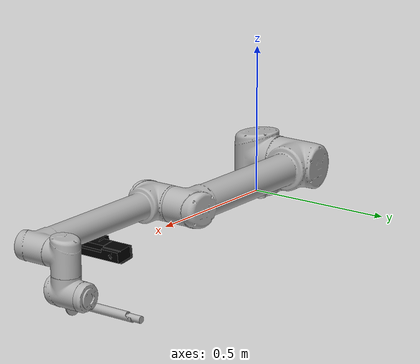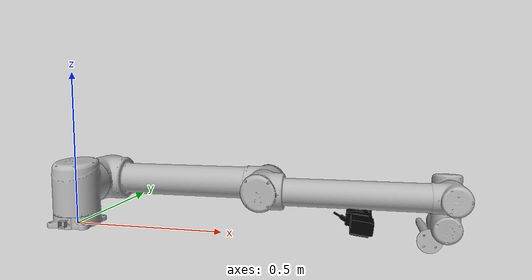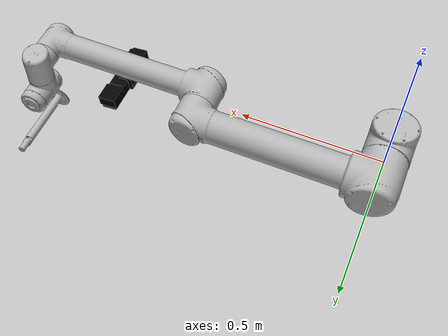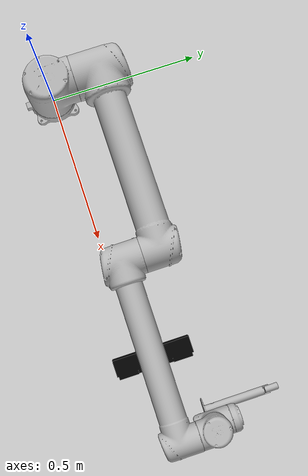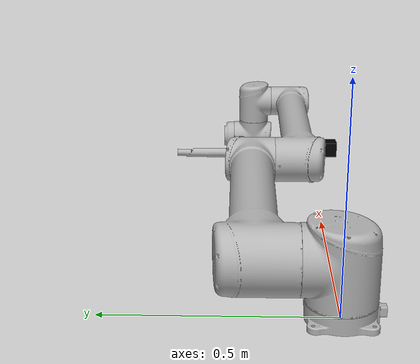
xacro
<?xml version="1.0"?>
<robot xmlns:xacro="http://www.ros.org/wiki/xacro" name="ur10_aug">

<!--
  Author: Kelsey Hawkins
  Contributers: Jimmy Da Silva, Ajit Krisshna N L, Muhammad Asif Rana
-->

  <xacro:include filename="$(find ur_description)/urdf/ur10.transmission.xacro" />
  <xacro:include filename="$(find ur_description)/urdf/ur10.gazebo.xacro" />

  <property name="pi" value="3.14159265" />
  <property name="max_velocity" value="1" />

  <!-- Inertia parameters -->
  <property name="base_mass" value="4.0" />  <!-- This mass might be incorrect -->
  <property name="shoulder_mass" value="7.778" />
  <property name="upper_arm_mass" value="12.93" />
  <property name="forearm_mass" value="3.87" />
  <property name="wrist_1_mass" value="1.96" />
  <property name="wrist_2_mass" value="1.96" />
  <property name="wrist_3_mass" value="0.202" />
  <property name="ee_link_mass" value="0.202" />
  <property name="kinect_mass" value="0.6" />

  <property name="shoulder_cog" value="0.00008 0.00244 -0.037" />
  <property name="upper_arm_cog" value="0.00001 0.15061 0.38757" />
  <property name="forearm_cog" value="-0.00012 0.06112 0.1984" />
  <property name="wrist_1_cog" value="-0.00021 -0.00112 0.02269" />
  <property name="wrist_2_cog" value="-0.00021 0.00112 0.002269" />
  <property name="wrist_3_cog" value="0 -0.001156 -0.00149" />

  <!-- Kinematic model -->
  <!-- Properties from urcontrol.conf -->
  <property name="ur10_d1" value="0.1273" />
  <property name="ur10_a2" value="-0.612" />
  <property name="ur10_a3" value="-0.5723" />
  <property name="ur10_d4" value="0.163941" />
  <property name="ur10_d5" value="0.1157" />
  <property name="ur10_d6" value="0.0922" />

  <!-- Arbitrary offsets for shoulder/elbow joints -->
  <property name="shoulder_offset" value="0.220941" />  <!-- measured from model -->
  <property name="elbow_offset" value="-0.1719" /> <!-- measured from model -->

  <!-- link lengths used in model -->
  <property name="shoulder_height" value="${ur10_d1}" />
  <property name="upper_arm_length" value="${-ur10_a2}" />
  <property name="forearm_length" value="${-ur10_a3}" />
  <property name="wrist_1_length" value="${ur10_d4 - elbow_offset - shoulder_offset}" />
  <property name="wrist_2_length" value="${ur10_d5}" />
  <property name="wrist_3_length" value="${ur10_d6}" />
  <property name="ee_length" value="0.253" />
  <property name="kinect_height" value="0.043" />
  <property name="kinect_length" value="0.249" />

  <xacro:macro name="cylinder_inertial" params="radius length mass *origin">
    <inertial>
      <mass value="${mass}" />
      <insert_block name="origin" />
      <inertia ixx="${0.0833333 * mass * (3 * radius * radius + length * length)}" ixy="0.0" ixz="0.0"
        iyy="${0.0833333 * mass * (3 * radius * radius + length * length)}" iyz="0.0"
        izz="${0.5 * mass * radius * radius}" />
    </inertial>
  </xacro:macro>

  <xacro:macro name="default_inertial" params="mass">
    <inertial>
      <mass value="${mass}" />
      <inertia ixx="1.0" ixy="0.0" ixz="0.0" iyy="1.0" iyz="0.0" izz="1.0" />
    </inertial>
  </xacro:macro>

  <xacro:macro name="ur10_robot" params="prefix joint_limited">

    <link name="${prefix}base_link" >
      <visual>
        <geometry>
          <mesh filename="package://ur_description/meshes/ur10/visual/Base.dae"/>
        </geometry>
        <material name="LightGrey">
          <color rgba="0.7 0.7 0.7 1.0"/>
        </material>
      </visual>
      <collision>
        <geometry>
          <mesh filename="package://ur_description/meshes/ur10/collision/base.stl"/>
        </geometry>
      </collision>
      <xacro:cylinder_inertial radius="0.075" length="0.038" mass="${base_mass}">
        <origin xyz="0.0 0.0 0.0" rpy="0 0 0" />
      </xacro:cylinder_inertial>
    </link>

    <joint name="${prefix}shoulder_pan_joint" type="revolute">
      <parent link="${prefix}base_link" />
      <child link = "${prefix}shoulder_link" />
      <origin xyz="0.0 0.0 ${shoulder_height}" rpy="0.0 0.0 0.0" />
      <axis xyz="0 0 1" />
      <xacro:unless value="${joint_limited}">
        <limit lower="${-2.0 * pi}" upper="${2.0 * pi}" effort="330.0" velocity="2.16"/>
      </xacro:unless>
      <xacro:if value="${joint_limited}">
        <limit lower="${-pi}" upper="${pi}" effort="330.0" velocity="2.16"/>
      </xacro:if>
      <dynamics damping="0.0" friction="0.0"/>
    </joint>

    <link name="${prefix}shoulder_link">
      <visual>
        <geometry>
          <mesh filename="package://ur_description/meshes/ur10/visual/Shoulder.dae"/>
        </geometry>
        <material name="LightGrey">
          <color rgba="0.7 0.7 0.7 1.0"/>
        </material>
      </visual>
      <collision>
        <geometry>
          <mesh filename="package://ur_description/meshes/ur10/collision/shoulder.stl"/>
        </geometry>
      </collision>
      <xacro:cylinder_inertial radius="0.075" length="0.178" mass="${shoulder_mass}">
        <origin xyz="0.0 0.0 0.0" rpy="0 0 0" />
      </xacro:cylinder_inertial>
    </link>

    <joint name="${prefix}shoulder_lift_joint" type="revolute">
      <parent link="${prefix}shoulder_link" />
      <child link = "${prefix}upper_arm_link" />
      <origin xyz="0.0 ${shoulder_offset} 0.0" rpy="0.0 ${pi / 2.0} 0.0" />
      <axis xyz="0 1 0" />
      <xacro:unless value="${joint_limited}">
        <limit lower="${-2.0 * pi}" upper="${2.0 * pi}" effort="330.0" velocity="2.16"/>
      </xacro:unless>
      <xacro:if value="${joint_limited}">
        <limit lower="${-pi}" upper="${pi}" effort="330.0" velocity="${max_velocity}"/>
      </xacro:if>
      <dynamics damping="0.0" friction="0.0"/>
    </joint>

    <link name="${prefix}upper_arm_link">
      <visual>
        <geometry>
          <mesh filename="package://ur_description/meshes/ur10/visual/UpperArm.dae"/>
        </geometry>
        <material name="LightGrey">
          <color rgba="0.7 0.7 0.7 1.0"/>
        </material>
      </visual>
      <collision>
        <geometry>
          <mesh filename="package://ur_description/meshes/ur10/collision/upper_arm.stl"/>
        </geometry>
      </collision>
      <xacro:cylinder_inertial radius="0.075" length="${-ur10_a2}" mass="${upper_arm_mass}">
        <origin xyz="0.0 0.0 ${-ur10_a2/2.0}" rpy="0 0 0" />
      </xacro:cylinder_inertial>
    </link>

    <joint name="${prefix}elbow_joint" type="revolute">
      <parent link="${prefix}upper_arm_link" />
      <child link = "${prefix}forearm_link" />
      <origin xyz="0.0 ${elbow_offset} ${upper_arm_length}" rpy="0.0 0.0 0.0" />
      <axis xyz="0 1 0" />
      <xacro:unless value="${joint_limited}">
        <limit lower="${-2.0 * pi}" upper="${2.0 * pi}" effort="150.0" velocity="3.15"/>
      </xacro:unless>
      <xacro:if value="${joint_limited}">
        <limit lower="${-pi}" upper="${pi}" effort="150.0" velocity="${max_velocity}"/>
      </xacro:if>
      <dynamics damping="0.0" friction="0.0"/>
    </joint>

    <link name="${prefix}forearm_link">
      <visual>
         <geometry>
          <mesh filename="package://ur_description/meshes/ur10/visual/Forearm.dae"/>
        </geometry>
        <material name="LightGrey">
          <color rgba="0.7 0.7 0.7 1.0"/>
        </material>
      </visual>
      <collision>
        <geometry>
          <mesh filename="package://ur_description/meshes/ur10/collision/forearm.stl"/>
        </geometry>
      </collision>
      <xacro:cylinder_inertial radius="0.075" length="${-ur10_a3}" mass="${forearm_mass}">
        <origin xyz="0.0 0.0 ${-ur10_a3/2.0}" rpy="0 0 0" />
      </xacro:cylinder_inertial>
    </link>

    <joint name="${prefix}wrist_1_joint" type="revolute">
      <parent link="${prefix}forearm_link" />
      <child link = "${prefix}wrist_1_link" />
      <origin xyz="0.0 0.0 ${forearm_length}" rpy="0.0 ${pi / 2.0} 0.0" />
      <axis xyz="0 1 0" />
      <xacro:unless value="${joint_limited}">
        <limit lower="${-2.0 * pi}" upper="${2.0 * pi}" effort="54.0" velocity="3.2"/>
      </xacro:unless>
      <xacro:if value="${joint_limited}">
        <limit lower="${-pi}" upper="${pi}" effort="54.0" velocity="${max_velocity}"/>
      </xacro:if>
      <dynamics damping="0.0" friction="0.0"/>
    </joint>

    <link name="${prefix}wrist_1_link">
      <visual>
        <geometry>
          <mesh filename="package://ur_description/meshes/ur10/visual/Wrist1.dae"/>
        </geometry>
        <material name="LightGrey">
          <color rgba="0.7 0.7 0.7 1.0"/>
        </material>
      </visual>
      <collision>
        <geometry>
          <mesh filename="package://ur_description/meshes/ur10/collision/wrist_1.stl"/>
        </geometry>
      </collision>
      <xacro:cylinder_inertial radius="0.075" length="0.12" mass="${wrist_1_mass}">
        <origin xyz="0.0 0.0 0.0" rpy="0 0 0" />
      </xacro:cylinder_inertial>
    </link>

    <joint name="${prefix}wrist_2_joint" type="revolute">
      <parent link="${prefix}wrist_1_link" />
      <child link = "${prefix}wrist_2_link" />
      <origin xyz="0.0 ${wrist_1_length} 0.0" rpy="0.0 0.0 0.0" />
      <axis xyz="0 0 1" />
      <xacro:unless value="${joint_limited}">
        <limit lower="${-2.0 * pi}" upper="${2.0 * pi}" effort="54.0" velocity="3.2"/>
      </xacro:unless>
      <xacro:if value="${joint_limited}">
        <limit lower="${-pi}" upper="${pi}" effort="54.0" velocity="${max_velocity}"/>
      </xacro:if>
      <dynamics damping="0.0" friction="0.0"/>
    </joint>

    <link name="${prefix}wrist_2_link">
      <visual>
        <geometry>
          <mesh filename="package://ur_description/meshes/ur10/visual/Wrist2.dae"/>
        </geometry>
        <material name="LightGrey">
          <color rgba="0.7 0.7 0.7 1.0"/>
        </material>
      </visual>
      <collision>
        <geometry>
          <mesh filename="package://ur_description/meshes/ur10/collision/wrist_2.stl"/>
        </geometry>
      </collision>
      <xacro:cylinder_inertial radius="0.075" length="0.12" mass="${wrist_2_mass}">
        <origin xyz="0.0 0.0 0.0" rpy="0 0 0" />
      </xacro:cylinder_inertial>
    </link>

    <joint name="${prefix}wrist_3_joint" type="revolute">
      <parent link="${prefix}wrist_2_link" />
      <child link = "${prefix}wrist_3_link" />
      <origin xyz="0.0 0.0 ${wrist_2_length}" rpy="0.0 0.0 0.0" />
      <axis xyz="0 1 0" />
      <xacro:unless value="${joint_limited}">
        <limit lower="${-2.0 * pi}" upper="${2.0 * pi}" effort="54.0" velocity="3.2"/>
      </xacro:unless>
      <xacro:if value="${joint_limited}">
        <limit lower="${-pi}" upper="${pi}" effort="54.0" velocity="${max_velocity}"/>
      </xacro:if>
      <dynamics damping="0.0" friction="0.0"/>
    </joint>

    <link name="${prefix}wrist_3_link">
      <visual>
        <geometry>
          <mesh filename="package://ur_description/meshes/ur10/visual/Wrist3.dae"/>
        </geometry>
        <material name="LightGrey">
          <color rgba="0.7 0.7 0.7 1.0"/>
        </material>
      </visual>
      <collision>
        <geometry>
          <mesh filename="package://ur_description/meshes/ur10/collision/wrist_3.stl"/>
        </geometry>
      </collision>
      <xacro:cylinder_inertial radius="0.075" length="0.12" mass="${wrist_3_mass}">
        <origin xyz="0.0 0.0 0.0" rpy="0 0 0" />
      </xacro:cylinder_inertial>
    </link>

    <joint name="${prefix}ee_fixed_joint" type="fixed">
      <parent link="${prefix}wrist_3_link" />
      <child link = "${prefix}ee_link" />
      <origin xyz="0.0 ${wrist_3_length + ee_length} 0.0" rpy="0.0 0.0 ${pi/2.0}" />
    </joint>

    <link name="${prefix}ee_link">
      <visual>
        <origin xyz="${-ee_length} -0.045 0.045" rpy="0 ${pi/2.0} 0" />
        <geometry>
          <mesh filename="file:///home/student/catkin_ws/src/augmented_robot_des/meshes/End_effector.STL" scale = "0.001 0.001 0.001"/>
        </geometry>
        <material name="LightGrey">
          <color rgba="0.7 0.7 0.7 1.0"/>
        </material>
      </visual>

      <collision>
        <origin xyz="${-ee_length} -0.045 0.045" rpy="0 ${pi/2.0} 0" />
        <geometry>
          <mesh filename="file:///home/student/catkin_ws/src/augmented_robot_des/meshes/End_effector.STL" scale = "0.001 0.001 0.001"/>
        </geometry>
      </collision>

    <xacro:cylinder_inertial radius="0.05" length="0.253" mass="${ee_link_mass}">
       <origin xyz="0 0 0" rpy="0 0 0" />
    </xacro:cylinder_inertial>
    </link>

    <joint name="${prefix}kinect_joint" type="fixed">
      <parent link="${prefix}forearm_link" />
      <child link = "${prefix}kinect_link" />
      <origin xyz="${kinect_height/2 + 0.05} 0.0 ${forearm_length/2}" rpy="0.0 ${pi/2.0} 0.0" />
    </joint>

    <link name="${prefix}kinect_link">
      <visual>
        <origin xyz="0.06 ${-kinect_length/2} ${-kinect_height/2-0.02}" rpy="0 0  ${pi/2.0}" />
        <geometry>
          <mesh filename="file:///home/student/catkin_ws/src/augmented_robot_des/meshes/kinect-1-1.STL" scale = "0.001 0.001 0.001"/>
        </geometry>
        <material name="Black">
          <color rgba="0 0 0 1.0"/>
        </material>
      </visual>

      <collision>
        <origin xyz="0.06 ${-kinect_length/2} ${-kinect_height/2-0.02} " rpy="0 0  ${pi/2.0}" />
        <geometry>
          <mesh filename="file:///home/student/catkin_ws/src/augmented_robot_des/meshes/kinect-1-1.STL" scale = "0.001 0.001 0.001"/>
        </geometry>
      </collision>

    <xacro:default_inertial mass="${kinect_mass}" />
    </link>

    <xacro:ur10_arm_transmission prefix="${prefix}" />
    <xacro:ur10_arm_gazebo prefix="${prefix}" />

  </xacro:macro>
  <xacro:ur10_robot prefix="" joint_limited="true"/>
</robot>
